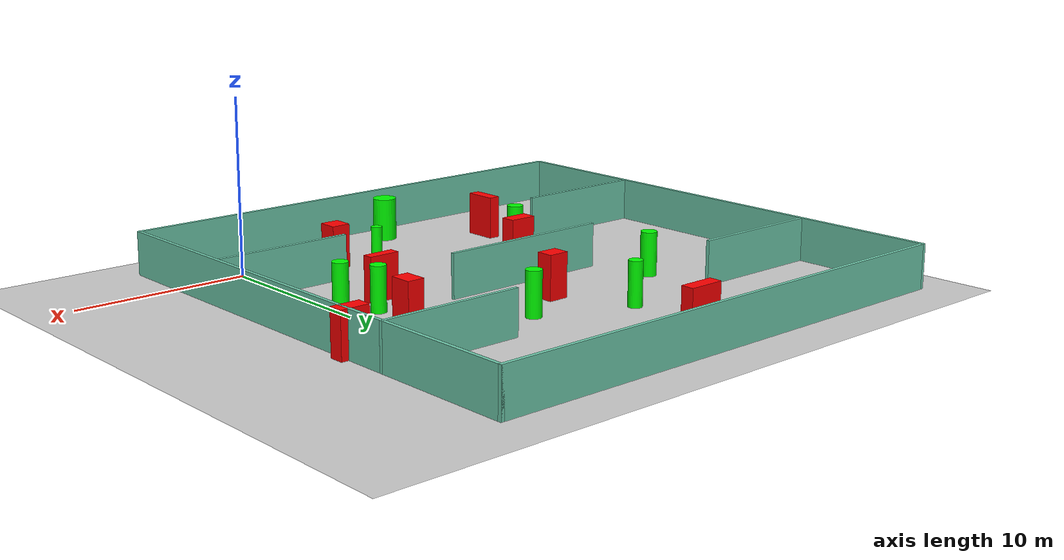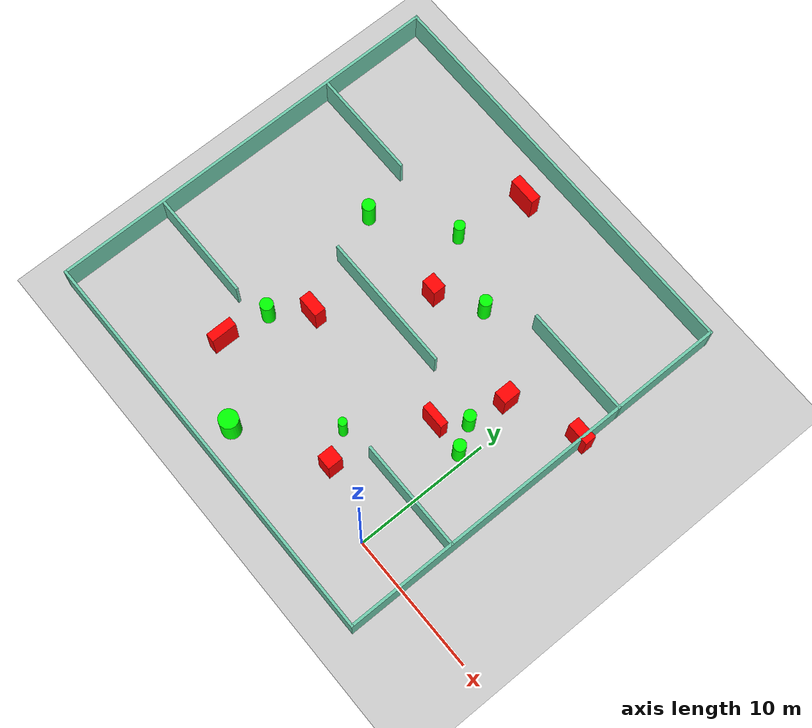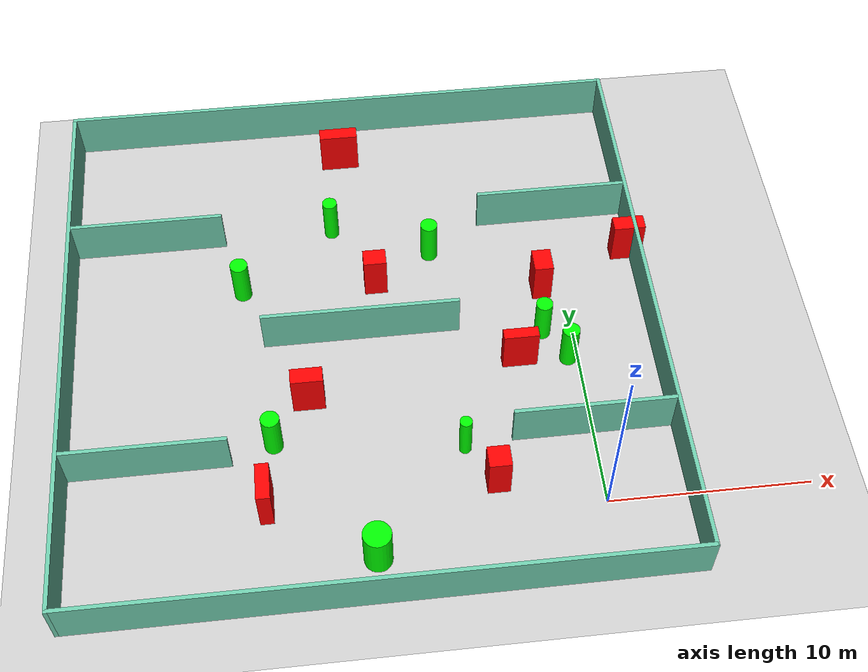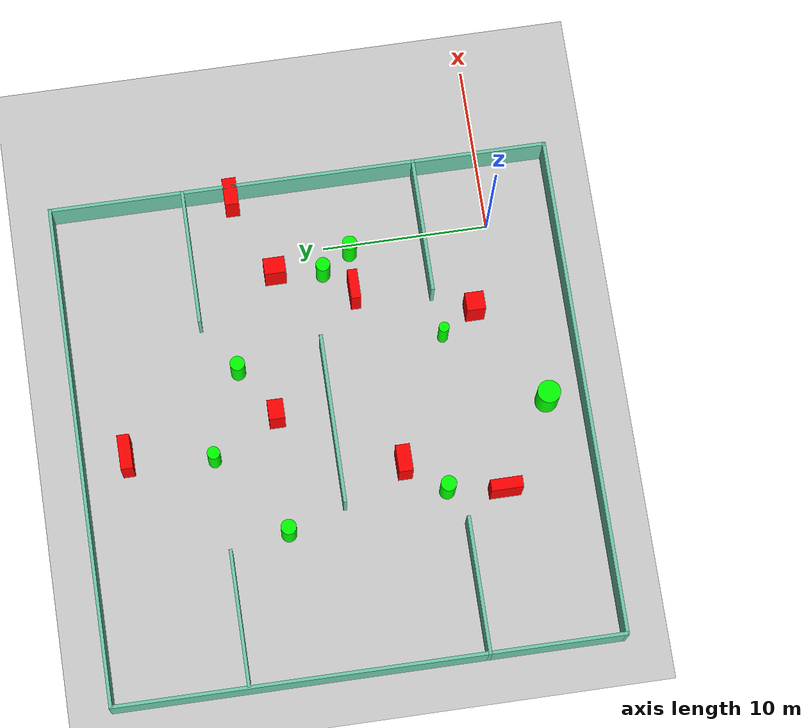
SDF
<sdf version="1.7">
 <world name="default">
  <light name="sun" type="directional">
   <pose>0 0 10 0 -0 0</pose>
   <diffuse>0.8 0.8 0.8 1</diffuse>
   <specular>0.2 0.2 0.2 1</specular>
   <attenuation>
    <range>1000</range>
    <constant>0.9</constant>
    <linear>0.01</linear>
    <quadratic>0.001</quadratic>
   </attenuation>
   <direction>-0.5 0.1 -0.9</direction>
   <spot><inner_angle>0</inner_angle><outer_angle>0</outer_angle><falloff>0</falloff></spot>
  </light>
  <model name="ground_plane">
   <static>1</static>
   <link name="link">
    <collision name="collision">
     <geometry><plane><normal>0 0 1</normal><size>100 100</size></plane></geometry>
     <surface>
      <contact><collide_bitmask>65535</collide_bitmask></contact>
      <friction><ode><mu>100</mu><mu2>50</mu2></ode></friction>
     </surface>
    </collision>
    <visual name="visual">
     <cast_shadows>0</cast_shadows>
     <geometry><plane><normal>0 0 1</normal><size>100 100</size></plane></geometry>
     <material>
      <script><uri>file://media/materials/scripts/gazebo.material</uri><name>Gazebo/Grey</name></script>
     </material>
    </visual>
   </link>
  </model>
  <gravity>0 0 -9.8</gravity>
  <magnetic_field>6e-06 2.3e-05 -4.2e-05</magnetic_field>
  <atmosphere type="adiabatic"/>
  <physics type="ode">
   <max_step_size>0.001</max_step_size>
   <real_time_factor>1</real_time_factor>
   <real_time_update_rate>1000</real_time_update_rate>
  </physics>
  <scene><ambient>0.4 0.4 0.4 1</ambient><background>0.7 0.7 0.7 1</background><shadows>1</shadows></scene>
  <spherical_coordinates>
   <surface_model>EARTH_WGS84</surface_model>
   <latitude_deg>0</latitude_deg>
   <longitude_deg>0</longitude_deg>
   <elevation>0</elevation>
   <heading_deg>0</heading_deg>
  </spherical_coordinates>
  <model name="my_base_walls">
   <link name="Wall_10">
    <collision name="Wall_10_Collision">
     <geometry><box><size>8.2 0.2 2.5</size></box></geometry>
     <pose>0 0 1.25 0 -0 0</pose>
    </collision>
    <visual name="Wall_10_Visual">
     <pose>0 0 1.25 0 -0 0</pose>
     <geometry><box><size>8.2 0.2 2.5</size></box></geometry>
     <material>
      <script><uri>file://media/materials/scripts/gazebo.material</uri><name>Gazebo/Grey</name></script>
      <ambient>0.435294 0.796078 0.67451 1</ambient>
     </material>
     <meta><layer>0</layer></meta>
    </visual>
    <pose>-11 -7 0 0 -0 0</pose>
   </link>
   <link name="Wall_12">
    <collision name="Wall_12_Collision">
     <geometry><box><size>8.2 0.2 2.5</size></box></geometry>
     <pose>0 0 1.25 0 -0 0</pose>
    </collision>
    <visual name="Wall_12_Visual">
     <pose>0 0 1.25 0 -0 0</pose>
     <geometry><box><size>8.2 0.2 2.5</size></box></geometry>
     <material>
      <script><uri>file://media/materials/scripts/gazebo.material</uri><name>Gazebo/Grey</name></script>
      <ambient>0.435294 0.796078 0.67451 1</ambient>
     </material>
     <meta><layer>0</layer></meta>
    </visual>
    <pose>-11 7 0 0 -0 0</pose>
   </link>
   <link name="Wall_14">
    <collision name="Wall_14_Collision">
     <geometry><box><size>8.2 0.2 2.5</size></box></geometry>
     <pose>0 0 1.25 0 -0 0</pose>
    </collision>
    <visual name="Wall_14_Visual">
     <pose>0 0 1.25 0 -0 0</pose>
     <geometry><box><size>8.2 0.2 2.5</size></box></geometry>
     <material>
      <script><uri>file://media/materials/scripts/gazebo.material</uri><name>Gazebo/Grey</name></script>
      <ambient>0.435294 0.796078 0.67451 1</ambient>
     </material>
     <meta><layer>0</layer></meta>
    </visual>
    <pose>11 7 0 0 -0 3.14159</pose>
   </link>
   <link name="Wall_16">
    <collision name="Wall_16_Collision">
     <geometry><box><size>10.2 0.2 2.5</size></box></geometry>
     <pose>0 0 1.25 0 -0 0</pose>
    </collision>
    <visual name="Wall_16_Visual">
     <pose>0 0 1.25 0 -0 0</pose>
     <geometry><box><size>10.2 0.2 2.5</size></box></geometry>
     <material>
      <script><uri>file://media/materials/scripts/gazebo.material</uri><name>Gazebo/Grey</name></script>
      <ambient>0.435294 0.796078 0.67451 1</ambient>
     </material>
     <meta><layer>0</layer></meta>
    </visual>
    <pose>0 0 0 0 -0 3.14159</pose>
   </link>
   <link name="Wall_2">
    <collision name="Wall_2_Collision">
     <geometry><box><size>30.2 0.2 2.5</size></box></geometry>
     <pose>0 0 1.25 0 -0 0</pose>
    </collision>
    <visual name="Wall_2_Visual">
     <pose>0 0 1.25 0 -0 0</pose>
     <geometry><box><size>30.2 0.2 2.5</size></box></geometry>
     <material>
      <script><uri>file://media/materials/scripts/gazebo.material</uri><name>Gazebo/Grey</name></script>
      <ambient>0.435294 0.796078 0.67451 1</ambient>
     </material>
     <meta><layer>0</layer></meta>
    </visual>
    <pose>0 -15 0 0 -0 3.14159</pose>
   </link>
   <link name="Wall_3">
    <collision name="Wall_3_Collision">
     <geometry><box><size>30.2 0.2 2.5</size></box></geometry>
     <pose>0 0 1.25 0 -0 0</pose>
    </collision>
    <visual name="Wall_3_Visual">
     <pose>0 0 1.25 0 -0 0</pose>
     <geometry><box><size>30.2 0.2 2.5</size></box></geometry>
     <material>
      <script><uri>file://media/materials/scripts/gazebo.material</uri><name>Gazebo/Grey</name></script>
      <ambient>0.435294 0.796078 0.67451 1</ambient>
     </material>
     <meta><layer>0</layer></meta>
    </visual>
    <pose>-15 0 0 0 -0 1.5708</pose>
   </link>
   <link name="Wall_4">
    <collision name="Wall_4_Collision">
     <geometry><box><size>30.2 0.2 2.5</size></box></geometry>
     <pose>0 0 1.25 0 -0 0</pose>
    </collision>
    <visual name="Wall_4_Visual">
     <pose>0 0 1.25 0 -0 0</pose>
     <geometry><box><size>30.2 0.2 2.5</size></box></geometry>
     <material>
      <script><uri>file://media/materials/scripts/gazebo.material</uri><name>Gazebo/Grey</name></script>
      <ambient>0.435294 0.796078 0.67451 1</ambient>
     </material>
     <meta><layer>0</layer></meta>
    </visual>
    <pose>0 15 0 0 -0 0</pose>
   </link>
   <link name="Wall_6">
    <collision name="Wall_6_Collision">
     <geometry><box><size>30.2 0.2 2.5</size></box></geometry>
     <pose>0 0 1.25 0 -0 0</pose>
    </collision>
    <visual name="Wall_6_Visual">
     <pose>0 0 1.25 0 -0 0</pose>
     <geometry><box><size>30.2 0.2 2.5</size></box></geometry>
     <material>
      <script><uri>file://media/materials/scripts/gazebo.material</uri><name>Gazebo/Grey</name></script>
      <ambient>0.435294 0.796078 0.67451 1</ambient>
     </material>
     <meta><layer>0</layer></meta>
    </visual>
    <pose>15 0 0 0 -0 1.5708</pose>
   </link>
   <link name="Wall_8">
    <collision name="Wall_8_Collision">
     <geometry><box><size>8.2 0.2 2.5</size></box></geometry>
     <pose>0 0 1.25 0 -0 0</pose>
    </collision>
    <visual name="Wall_8_Visual">
     <pose>0 0 1.25 0 -0 0</pose>
     <geometry><box><size>8.2 0.2 2.5</size></box></geometry>
     <material>
      <script><uri>file://media/materials/scripts/gazebo.material</uri><name>Gazebo/Grey</name></script>
      <ambient>0.435294 0.796078 0.67451 1</ambient>
     </material>
     <meta><layer>0</layer></meta>
    </visual>
    <pose>11 -7 0 0 -0 3.14159</pose>
   </link>
   <static>1</static>
   <pose>-11 11 0 0 -0 0</pose>
  </model>
  <model name="cylinder1">
   <static>1</static>
   <link name="link">
    <inertial>
     <mass>1</mass>
     <inertia><ixx>0.5</ixx><ixy>0</ixy><ixz>0</ixz><iyy>0.5</iyy><iyz>0</iyz><izz>1</izz></inertia>
    </inertial>
    <collision name="collision">
     <geometry><cylinder><radius>0.6898997058558842</radius><length>2.5</length></cylinder></geometry>
    </collision>
    <visual name="visual">
     <geometry><cylinder><radius>0.6898997058558842</radius><length>2.5</length></cylinder></geometry>
     <material>
      <ambient>0 1 0 1</ambient>
      <diffuse>0 1 0 1</diffuse>
      <specular>0.1 0.1 0.1 1</specular>
      <emissive>0 0 0 0</emissive>
     </material>
    </visual>
   </link>
   <pose>-11.235205765680735 -1.8393749081610489 1.25 0 0 0</pose>
  </model>
  <model name="cylinder2">
   <static>1</static>
   <link name="link">
    <inertial>
     <mass>1</mass>
     <inertia><ixx>0.5</ixx><ixy>0</ixy><ixz>0</ixz><iyy>0.5</iyy><iyz>0</iyz><izz>1</izz></inertia>
    </inertial>
    <collision name="collision">
     <geometry><cylinder><radius>0.30936106709111166</radius><length>2.5</length></cylinder></geometry>
    </collision>
    <visual name="visual">
     <geometry><cylinder><radius>0.30936106709111166</radius><length>2.5</length></cylinder></geometry>
     <material>
      <ambient>0 1 0 1</ambient>
      <diffuse>0 1 0 1</diffuse>
      <specular>0.1 0.1 0.1 1</specular>
      <emissive>0 0 0 0</emissive>
     </material>
    </visual>
   </link>
   <pose>-6.473176255032735 3.688871307064508 1.25 0 0 0</pose>
  </model>
  <model name="cylinder3">
   <static>1</static>
   <link name="link">
    <inertial>
     <mass>1</mass>
     <inertia><ixx>0.5</ixx><ixy>0</ixy><ixz>0</ixz><iyy>0.5</iyy><iyz>0</iyz><izz>1</izz></inertia>
    </inertial>
    <collision name="collision">
     <geometry><cylinder><radius>0.42699114368011126</radius><length>2.5</length></cylinder></geometry>
    </collision>
    <visual name="visual">
     <geometry><cylinder><radius>0.42699114368011126</radius><length>2.5</length></cylinder></geometry>
     <material>
      <ambient>0 1 0 1</ambient>
      <diffuse>0 1 0 1</diffuse>
      <specular>0.1 0.1 0.1 1</specular>
      <emissive>0 0 0 0</emissive>
     </material>
    </visual>
   </link>
   <pose>-1.6209013110720747 10.260407095651829 1.25 0 0 0</pose>
  </model>
  <model name="cylinder4">
   <static>1</static>
   <link name="link">
    <inertial>
     <mass>1</mass>
     <inertia><ixx>0.5</ixx><ixy>0</ixy><ixz>0</ixz><iyy>0.5</iyy><iyz>0</iyz><izz>1</izz></inertia>
    </inertial>
    <collision name="collision">
     <geometry><cylinder><radius>0.4706211426835225</radius><length>2.5</length></cylinder></geometry>
    </collision>
    <visual name="visual">
     <geometry><cylinder><radius>0.4706211426835225</radius><length>2.5</length></cylinder></geometry>
     <material>
      <ambient>0 1 0 1</ambient>
      <diffuse>0 1 0 1</diffuse>
      <specular>0.1 0.1 0.1 1</specular>
      <emissive>0 0 0 0</emissive>
     </material>
    </visual>
   </link>
   <pose>-15.843198488927733 4.848561097489746 1.25 0 0 0</pose>
  </model>
  <model name="cylinder5">
   <static>1</static>
   <link name="link">
    <inertial>
     <mass>1</mass>
     <inertia><ixx>0.5</ixx><ixy>0</ixy><ixz>0</ixz><iyy>0.5</iyy><iyz>0</iyz><izz>1</izz></inertia>
    </inertial>
    <collision name="collision">
     <geometry><cylinder><radius>0.44379687560558845</radius><length>2.5</length></cylinder></geometry>
    </collision>
    <visual name="visual">
     <geometry><cylinder><radius>0.44379687560558845</radius><length>2.5</length></cylinder></geometry>
     <material>
      <ambient>0 1 0 1</ambient>
      <diffuse>0 1 0 1</diffuse>
      <specular>0.1 0.1 0.1 1</specular>
      <emissive>0 0 0 0</emissive>
     </material>
    </visual>
   </link>
   <pose>-0.5344859214449045 8.48998406749395 1.25 0 0 0</pose>
  </model>
  <model name="cylinder6">
   <static>1</static>
   <link name="link">
    <inertial>
     <mass>1</mass>
     <inertia><ixx>0.5</ixx><ixy>0</ixy><ixz>0</ixz><iyy>0.5</iyy><iyz>0</iyz><izz>1</izz></inertia>
    </inertial>
    <collision name="collision">
     <geometry><cylinder><radius>0.44351565981573937</radius><length>2.5</length></cylinder></geometry>
    </collision>
    <visual name="visual">
     <geometry><cylinder><radius>0.44351565981573937</radius><length>2.5</length></cylinder></geometry>
     <material>
      <ambient>0 1 0 1</ambient>
      <diffuse>0 1 0 1</diffuse>
      <specular>0.1 0.1 0.1 1</specular>
      <emissive>0 0 0 0</emissive>
     </material>
    </visual>
   </link>
   <pose>-6.93613626667425 16.121045533561528 1.25 0 0 0</pose>
  </model>
  <model name="cylinder7">
   <static>1</static>
   <link name="link">
    <inertial>
     <mass>1</mass>
     <inertia><ixx>0.5</ixx><ixy>0</ixy><ixz>0</ixz><iyy>0.5</iyy><iyz>0</iyz><izz>1</izz></inertia>
    </inertial>
    <collision name="collision">
     <geometry><cylinder><radius>0.45991469631836435</radius><length>2.5</length></cylinder></geometry>
    </collision>
    <visual name="visual">
     <geometry><cylinder><radius>0.45991469631836435</radius><length>2.5</length></cylinder></geometry>
     <material>
      <ambient>0 1 0 1</ambient>
      <diffuse>0 1 0 1</diffuse>
      <specular>0.1 0.1 0.1 1</specular>
      <emissive>0 0 0 0</emissive>
     </material>
    </visual>
   </link>
   <pose>-17.08042164398765 14.46692526966914 1.25 0 0 0</pose>
  </model>
  <model name="cylinder8">
   <static>1</static>
   <link name="link">
    <inertial>
     <mass>1</mass>
     <inertia><ixx>0.5</ixx><ixy>0</ixy><ixz>0</ixz><iyy>0.5</iyy><iyz>0</iyz><izz>1</izz></inertia>
    </inertial>
    <collision name="collision">
     <geometry><cylinder><radius>0.3884661717366659</radius><length>2.5</length></cylinder></geometry>
    </collision>
    <visual name="visual">
     <geometry><cylinder><radius>0.3884661717366659</radius><length>2.5</length></cylinder></geometry>
     <material>
      <ambient>0 1 0 1</ambient>
      <diffuse>0 1 0 1</diffuse>
      <specular>0.1 0.1 0.1 1</specular>
      <emissive>0 0 0 0</emissive>
     </material>
    </visual>
   </link>
   <pose>-12.09445546952782 18.22196291591727 1.25 0 0 0</pose>
  </model>
  <model name="box1">
   <static>1</static>
   <link name="link">
    <inertial>
     <mass>1</mass>
     <inertia><ixx>0.083</ixx><ixy>0</ixy><ixz>0</ixz><iyy>0.083</iyy><iyz>0</iyz><izz>0.083</izz></inertia>
    </inertial>
    <collision name="collision">
     <geometry><box><size>0.6778425592739057 1.8977657160830836 2.5</size></box></geometry>
    </collision>
    <visual name="visual">
     <geometry><box><size>0.6778425592739057 1.8977657160830836 2.5</size></box></geometry>
     <material>
      <ambient>1 0 0 1</ambient>
      <diffuse>1 0 0 1</diffuse>
      <specular>0.1 0.1 0.1 1</specular>
      <emissive>0 0 0 0</emissive>
     </material>
    </visual>
    <sensor name="my_contact" type="contact">
     <contact><collision>box_collision</collision><topic>__default_topic__</topic></contact>
    </sensor>
   </link>
   <pose>-16.324227192762564 1.487709832815785 1.25 0 0 0</pose>
  </model>
  <model name="box2">
   <static>1</static>
   <link name="link">
    <inertial>
     <mass>1</mass>
     <inertia><ixx>0.083</ixx><ixy>0</ixy><ixz>0</ixz><iyy>0.083</iyy><iyz>0</iyz><izz>0.083</izz></inertia>
    </inertial>
    <collision name="collision">
     <geometry><box><size>1.66193004123203 0.839942596315066 2.5</size></box></geometry>
    </collision>
    <visual name="visual">
     <geometry><box><size>1.66193004123203 0.839942596315066 2.5</size></box></geometry>
     <material>
      <ambient>1 0 0 1</ambient>
      <diffuse>1 0 0 1</diffuse>
      <specular>0.1 0.1 0.1 1</specular>
      <emissive>0 0 0 0</emissive>
     </material>
    </visual>
    <sensor name="my_contact" type="contact">
     <contact><collision>box_collision</collision><topic>__default_topic__</topic></contact>
    </sensor>
   </link>
   <pose>3.68733544942139 15.129885596625602 1.25 0 0 0</pose>
  </model>
  <model name="box3">
   <static>1</static>
   <link name="link">
    <inertial>
     <mass>1</mass>
     <inertia><ixx>0.083</ixx><ixy>0</ixy><ixz>0</ixz><iyy>0.083</iyy><iyz>0</iyz><izz>0.083</izz></inertia>
    </inertial>
    <collision name="collision">
     <geometry><box><size>1.1079597431842967 1.1265231888239868 2.5</size></box></geometry>
    </collision>
    <visual name="visual">
     <geometry><box><size>1.1079597431842967 1.1265231888239868 2.5</size></box></geometry>
     <material>
      <ambient>1 0 0 1</ambient>
      <diffuse>1 0 0 1</diffuse>
      <specular>0.1 0.1 0.1 1</specular>
      <emissive>0 0 0 0</emissive>
     </material>
    </visual>
    <sensor name="my_contact" type="contact">
     <contact><collision>box_collision</collision><topic>__default_topic__</topic></contact>
    </sensor>
   </link>
   <pose>-5.142295508183681 1.6132225551181287 1.25 0 0 0</pose>
  </model>
  <model name="box4">
   <static>1</static>
   <link name="link">
    <inertial>
     <mass>1</mass>
     <inertia><ixx>0.083</ixx><ixy>0</ixy><ixz>0</ixz><iyy>0.083</iyy><iyz>0</iyz><izz>0.083</izz></inertia>
    </inertial>
    <collision name="collision">
     <geometry><box><size>0.9874944801214287 1.2963174549008307 2.5</size></box></geometry>
    </collision>
    <visual name="visual">
     <geometry><box><size>0.9874944801214287 1.2963174549008307 2.5</size></box></geometry>
     <material>
      <ambient>1 0 0 1</ambient>
      <diffuse>1 0 0 1</diffuse>
      <specular>0.1 0.1 0.1 1</specular>
      <emissive>0 0 0 0</emissive>
     </material>
    </visual>
    <sensor name="my_contact" type="contact">
     <contact><collision>box_collision</collision><topic>__default_topic__</topic></contact>
    </sensor>
   </link>
   <pose>-1.278469251337107 13.131763916889007 1.25 0 0 0</pose>
  </model>
  <model name="box5">
   <static>1</static>
   <link name="link">
    <inertial>
     <mass>1</mass>
     <inertia><ixx>0.083</ixx><ixy>0</ixy><ixz>0</ixz><iyy>0.083</iyy><iyz>0</iyz><izz>0.083</izz></inertia>
    </inertial>
    <collision name="collision">
     <geometry><box><size>2.0642269027876425 0.7296177402525879 2.5</size></box></geometry>
    </collision>
    <visual name="visual">
     <geometry><box><size>2.0642269027876425 0.7296177402525879 2.5</size></box></geometry>
     <material>
      <ambient>1 0 0 1</ambient>
      <diffuse>1 0 0 1</diffuse>
      <specular>0.1 0.1 0.1 1</specular>
      <emissive>0 0 0 0</emissive>
     </material>
    </visual>
    <sensor name="my_contact" type="contact">
     <contact><collision>box_collision</collision><topic>__default_topic__</topic></contact>
    </sensor>
   </link>
   <pose>-11.288567659396914 23.357455090433273 1.25 0 0 0</pose>
  </model>
  <model name="box6">
   <static>1</static>
   <link name="link">
    <inertial>
     <mass>1</mass>
     <inertia><ixx>0.083</ixx><ixy>0</ixy><ixz>0</ixz><iyy>0.083</iyy><iyz>0</iyz><izz>0.083</izz></inertia>
    </inertial>
    <collision name="collision">
     <geometry><box><size>1.7962926275736155 0.586092522561523 2.5</size></box></geometry>
    </collision>
    <visual name="visual">
     <geometry><box><size>1.7962926275736155 0.586092522561523 2.5</size></box></geometry>
     <material>
      <ambient>1 0 0 1</ambient>
      <diffuse>1 0 0 1</diffuse>
      <specular>0.1 0.1 0.1 1</specular>
      <emissive>0 0 0 0</emissive>
     </material>
    </visual>
    <sensor name="my_contact" type="contact">
     <contact><collision>box_collision</collision><topic>__default_topic__</topic></contact>
    </sensor>
   </link>
   <pose>-3.0730259214521567 8.585904446590959 1.25 0 0 0</pose>
  </model>
  <model name="box7">
   <static>1</static>
   <link name="link">
    <inertial>
     <mass>1</mass>
     <inertia><ixx>0.083</ixx><ixy>0</ixy><ixz>0</ixz><iyy>0.083</iyy><iyz>0</iyz><izz>0.083</izz></inertia>
    </inertial>
    <collision name="collision">
     <geometry><box><size>1.6224017532332582 0.849115319312986 2.5</size></box></geometry>
    </collision>
    <visual name="visual">
     <geometry><box><size>1.6224017532332582 0.849115319312986 2.5</size></box></geometry>
     <material>
      <ambient>1 0 0 1</ambient>
      <diffuse>1 0 0 1</diffuse>
      <specular>0.1 0.1 0.1 1</specular>
      <emissive>0 0 0 0</emissive>
     </material>
    </visual>
    <sensor name="my_contact" type="contact">
     <contact><collision>box_collision</collision><topic>__default_topic__</topic></contact>
    </sensor>
   </link>
   <pose>-13.966258031183656 7.195984752635509 1.25 0 0 0</pose>
  </model>
  <model name="box8">
   <static>1</static>
   <link name="link">
    <inertial>
     <mass>1</mass>
     <inertia><ixx>0.083</ixx><ixy>0</ixy><ixz>0</ixz><iyy>0.083</iyy><iyz>0</iyz><izz>0.083</izz></inertia>
    </inertial>
    <collision name="collision">
     <geometry><box><size>1.1956642509505273 0.9487137455214317 2.5</size></box></geometry>
    </collision>
    <visual name="visual">
     <geometry><box><size>1.1956642509505273 0.9487137455214317 2.5</size></box></geometry>
     <material>
      <ambient>1 0 0 1</ambient>
      <diffuse>1 0 0 1</diffuse>
      <specular>0.1 0.1 0.1 1</specular>
      <emissive>0 0 0 0</emissive>
     </material>
    </visual>
    <sensor name="my_contact" type="contact">
     <contact><collision>box_collision</collision><topic>__default_topic__</topic></contact>
    </sensor>
   </link>
   <pose>-10.00341399376605 14.246250816933955 1.25 0 0 0</pose>
  </model>
 </world>
</sdf>
